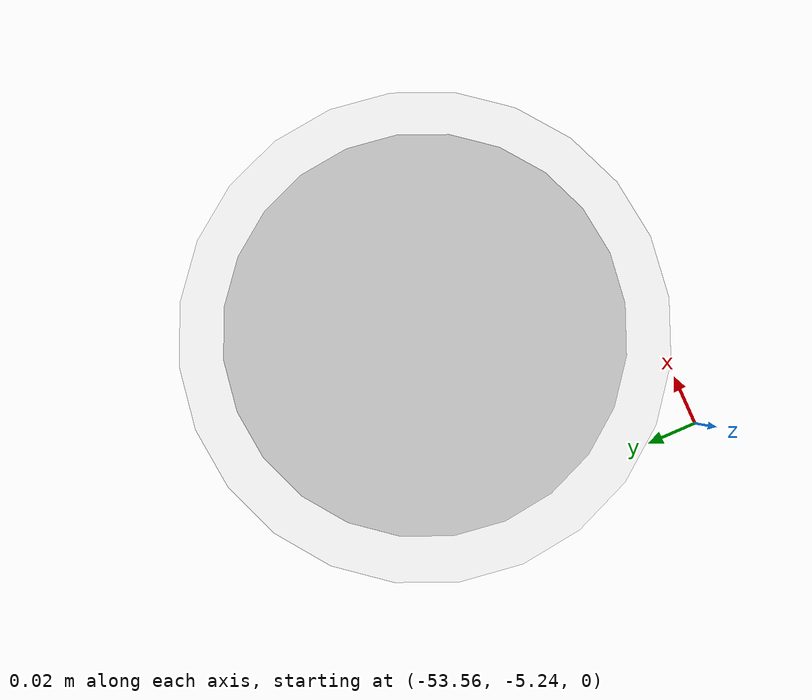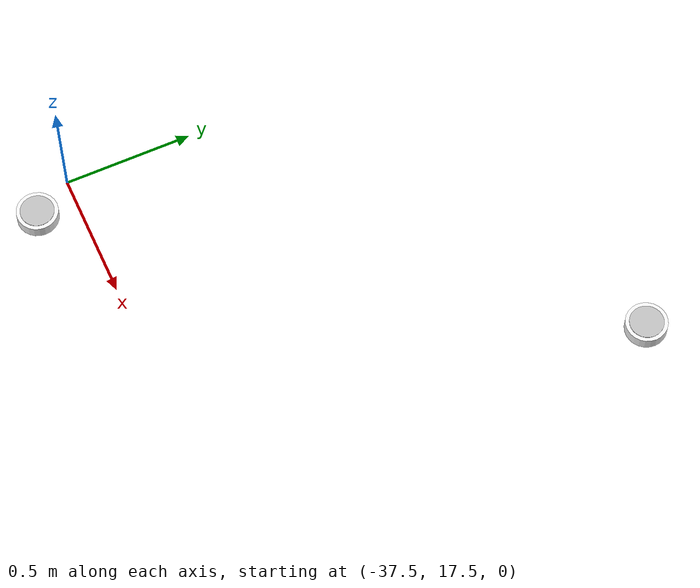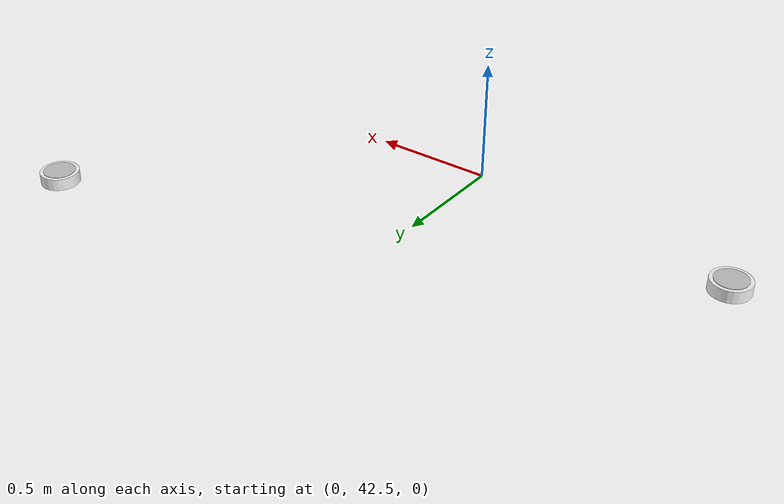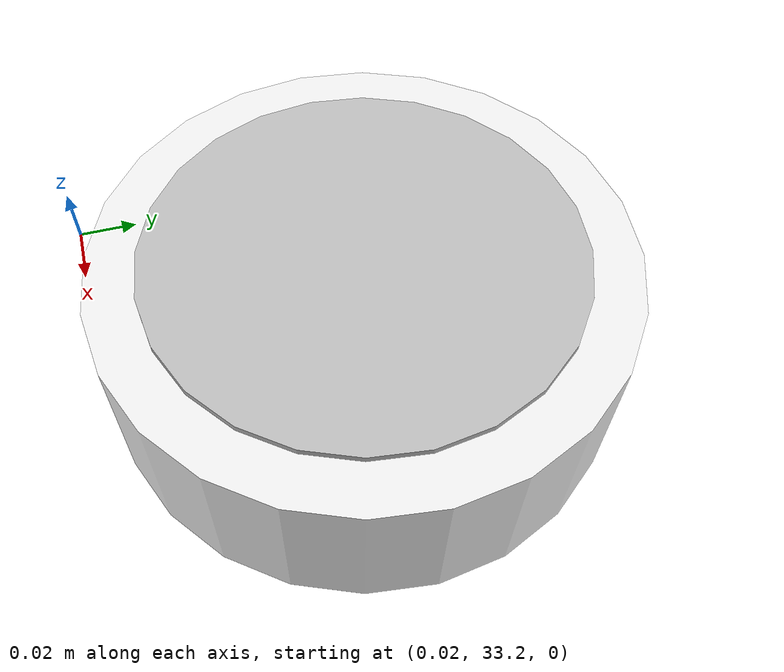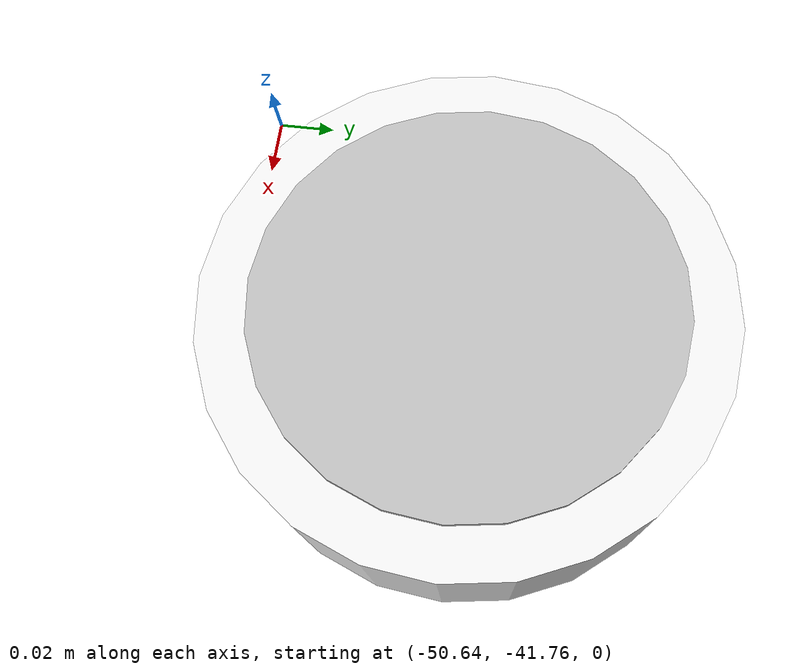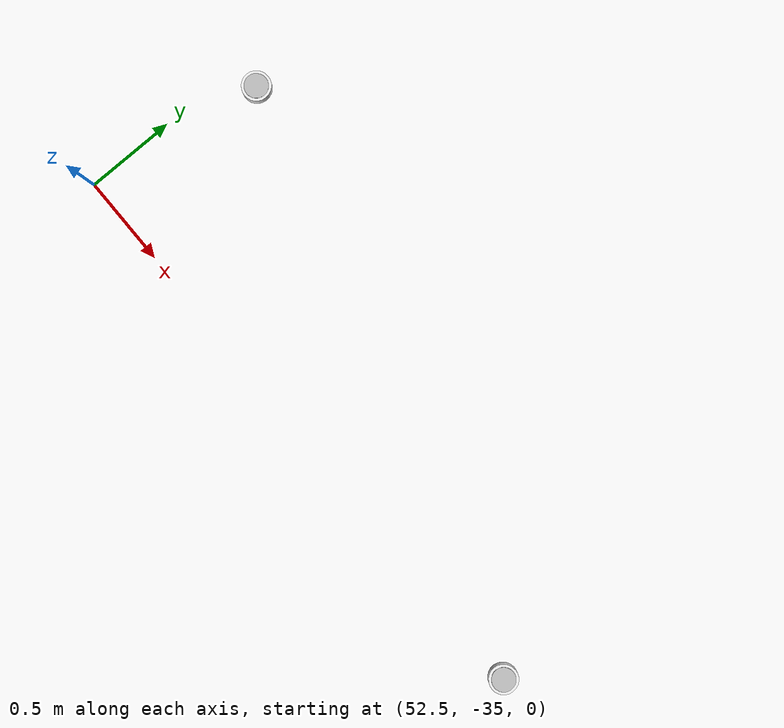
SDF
<?xml version="1.0" encoding="UTF-8"?>
<!-- Author: Frank Loewenich. Generated by tools/make_world.py: regenerate rather than edit, and keep the JSON in step. -->
<sdf version="1.9">
  <world name="bowl_field_dense">
    <physics type="ode">
      <max_step_size>0.004</max_step_size>
      <real_time_factor>1.0</real_time_factor>
      <real_time_update_rate>250</real_time_update_rate>
    </physics>
    <plugin name="gz::sim::systems::Physics" filename="gz-sim-physics-system"/>
    <plugin name="gz::sim::systems::UserCommands" filename="gz-sim-user-commands-system"/>
    <plugin name="gz::sim::systems::SceneBroadcaster" filename="gz-sim-scene-broadcaster-system"/>
    <plugin name="gz::sim::systems::Contact" filename="gz-sim-contact-system"/>
    <plugin name="gz::sim::systems::Imu" filename="gz-sim-imu-system"/>
    <plugin name="gz::sim::systems::AirPressure" filename="gz-sim-air-pressure-system"/>
    <plugin name="gz::sim::systems::ApplyLinkWrench" filename="gz-sim-apply-link-wrench-system"/>
    <plugin name="gz::sim::systems::NavSat" filename="gz-sim-navsat-system"/>
    <plugin name="gz::sim::systems::Sensors" filename="gz-sim-sensors-system">
      <render_engine>ogre2</render_engine>
    </plugin>

    <gui fullscreen="false">
      <plugin filename="MinimalScene" name="3D View">
        <gz-gui><title>3D View</title><property type="bool" key="showTitleBar">false</property><property type="string" key="state">docked</property></gz-gui>
        <engine>ogre2</engine><scene>scene</scene>
        <ambient_light>0.4 0.4 0.4</ambient_light><background_color>0.8 0.8 0.8</background_color>
        <camera_pose>-20 0 12 0 0.5 0</camera_pose>
        <camera_clip><near>0.25</near><far>25000</far></camera_clip>
      </plugin>
      <plugin filename="GzSceneManager" name="Scene Manager"><gz-gui><property key="state" type="string">floating</property><property key="showTitleBar" type="bool">false</property></gz-gui></plugin>
      <plugin filename="InteractiveViewControl" name="Interactive view control"><gz-gui><property key="state" type="string">floating</property><property key="showTitleBar" type="bool">false</property></gz-gui></plugin>
      <plugin filename="CameraTracking" name="Camera Tracking"><gz-gui><property key="state" type="string">floating</property><property key="showTitleBar" type="bool">false</property></gz-gui></plugin>
      <plugin filename="WorldControl" name="World control">
        <gz-gui><title>World control</title><property type="bool" key="showTitleBar">false</property><property type="bool" key="resizable">false</property><property type="double" key="height">72</property><property type="double" key="width">121</property><property type="double" key="z">1</property><property type="string" key="state">floating</property>
          <anchors target="3D View"><line own="left" target="left"/><line own="bottom" target="bottom"/></anchors></gz-gui>
        <play_pause>true</play_pause><step>true</step><start_paused>true</start_paused>
      </plugin>
      <plugin filename="WorldStats" name="World stats">
        <gz-gui><title>World stats</title><property type="bool" key="showTitleBar">false</property><property type="bool" key="resizable">false</property><property type="double" key="height">110</property><property type="double" key="width">290</property><property type="double" key="z">1</property><property type="string" key="state">floating</property>
          <anchors target="3D View"><line own="right" target="right"/><line own="bottom" target="bottom"/></anchors></gz-gui>
        <sim_time>true</sim_time><real_time>true</real_time><real_time_factor>true</real_time_factor><iterations>true</iterations>
      </plugin>
      <plugin filename="ImageDisplay" name="Survey camera"><gz-gui><property key="state" type="string">docked</property></gz-gui><topic>/uav/camera</topic></plugin>
    </gui>

    <gravity>0 0 -9.8</gravity>
    <magnetic_field>6e-06 2.3e-05 -4.2e-05</magnetic_field>
    <atmosphere type="adiabatic"/>
    <scene>
      <grid>false</grid>
      <ambient>0.8 0.8 0.8 1</ambient>
      <background>0.7 0.8 1 1</background>
      <shadows>true</shadows>
    </scene>
    <light type="directional" name="sun">
      <cast_shadows>true</cast_shadows>
      <pose>0 0 100 0 0 0</pose>
      <intensity>1.6</intensity>
      <diffuse>1 1 0.95 1</diffuse>
      <specular>0.3 0.3 0.3 1</specular>
      <direction>-0.4 0.3 -0.85</direction>
    </light>
    <include><uri>model://grass_ground</uri></include>
    <include><name>bowl_000</name><uri>model://bowl</uri><pose>51.988 44.962 0 0 0 0</pose></include>
    <include><name>bowl_001</name><uri>model://bowl</uri><pose>-50.553 -41.679 0 0 0 0</pose></include>
    <include><name>bowl_002</name><uri>model://bowl</uri><pose>38.247 23.691 0 0 0 0</pose></include>
    <include><name>bowl_003</name><uri>model://bowl</uri><pose>19.349 -19.263 0 0 0 0</pose></include>
    <include><name>bowl_004</name><uri>model://bowl</uri><pose>12.078 10.723 0 0 0 0</pose></include>
    <include><name>bowl_005</name><uri>model://bowl</uri><pose>9.257 -34.298 0 0 0 0</pose></include>
    <include><name>bowl_006</name><uri>model://bowl</uri><pose>-7.904 -10.689 0 0 0 0</pose></include>
    <include><name>bowl_007</name><uri>model://bowl</uri><pose>25.423 49.68 0 0 0 0</pose></include>
    <include><name>bowl_008</name><uri>model://bowl</uri><pose>51.231 4.435 0 0 0 0</pose></include>
    <include><name>bowl_009</name><uri>model://bowl</uri><pose>-6.287 -23.269 0 0 0 0</pose></include>
    <include><name>bowl_010</name><uri>model://bowl</uri><pose>-52.905 -47.445 0 0 0 0</pose></include>
    <include><name>bowl_011</name><uri>model://bowl</uri><pose>-4.002 -18.226 0 0 0 0</pose></include>
    <include><name>bowl_012</name><uri>model://bowl</uri><pose>-13.678 39.336 0 0 0 0</pose></include>
    <include><name>bowl_013</name><uri>model://bowl</uri><pose>2.936 6.075 0 0 0 0</pose></include>
    <include><name>bowl_014</name><uri>model://bowl</uri><pose>-30.082 -47.805 0 0 0 0</pose></include>
    <include><name>bowl_015</name><uri>model://bowl</uri><pose>-19.934 -36.476 0 0 0 0</pose></include>
    <include><name>bowl_016</name><uri>model://bowl</uri><pose>1.166 50.068 0 0 0 0</pose></include>
    <include><name>bowl_017</name><uri>model://bowl</uri><pose>19.891 -31.943 0 0 0 0</pose></include>
    <include><name>bowl_018</name><uri>model://bowl</uri><pose>44.867 29.795 0 0 0 0</pose></include>
    <include><name>bowl_019</name><uri>model://bowl</uri><pose>26.722 40.822 0 0 0 0</pose></include>
    <include><name>bowl_020</name><uri>model://bowl</uri><pose>29.969 29.091 0 0 0 0</pose></include>
    <include><name>bowl_021</name><uri>model://bowl</uri><pose>-16.668 48.29 0 0 0 0</pose></include>
    <include><name>bowl_022</name><uri>model://bowl</uri><pose>52.657 -34.017 0 0 0 0</pose></include>
    <include><name>bowl_023</name><uri>model://bowl</uri><pose>28.956 21.601 0 0 0 0</pose></include>
    <include><name>bowl_024</name><uri>model://bowl</uri><pose>-4.4 3.048 0 0 0 0</pose></include>
    <include><name>bowl_025</name><uri>model://bowl</uri><pose>-1.138 42.653 0 0 0 0</pose></include>
    <include><name>bowl_026</name><uri>model://bowl</uri><pose>0.096 33.285 0 0 0 0</pose></include>
    <include><name>bowl_027</name><uri>model://bowl</uri><pose>-16.653 38.438 0 0 0 0</pose></include>
    <include><name>bowl_028</name><uri>model://bowl</uri><pose>45.566 -3.914 0 0 0 0</pose></include>
    <include><name>bowl_029</name><uri>model://bowl</uri><pose>7.718 42.201 0 0 0 0</pose></include>
    <include><name>bowl_030</name><uri>model://bowl</uri><pose>25.51 -1.345 0 0 0 0</pose></include>
    <include><name>bowl_031</name><uri>model://bowl</uri><pose>-31.714 -17.603 0 0 0 0</pose></include>
    <include><name>bowl_032</name><uri>model://bowl</uri><pose>22.751 -33.527 0 0 0 0</pose></include>
    <include><name>bowl_033</name><uri>model://bowl</uri><pose>46.505 -23.279 0 0 0 0</pose></include>
    <include><name>bowl_034</name><uri>model://bowl</uri><pose>46.897 -19.12 0 0 0 0</pose></include>
    <include><name>bowl_035</name><uri>model://bowl</uri><pose>52.139 20.703 0 0 0 0</pose></include>
    <include><name>bowl_036</name><uri>model://bowl</uri><pose>0.484 1.782 0 0 0 0</pose></include>
    <include><name>bowl_037</name><uri>model://bowl</uri><pose>17.261 8.83 0 0 0 0</pose></include>
    <include><name>bowl_038</name><uri>model://bowl</uri><pose>-21.45 -29.335 0 0 0 0</pose></include>
    <include><name>bowl_039</name><uri>model://bowl</uri><pose>1.356 43.589 0 0 0 0</pose></include>
    <include><name>bowl_040</name><uri>model://bowl</uri><pose>14.052 -42.632 0 0 0 0</pose></include>
    <include><name>bowl_041</name><uri>model://bowl</uri><pose>46.473 -30.983 0 0 0 0</pose></include>
    <include><name>bowl_042</name><uri>model://bowl</uri><pose>27.905 -44.301 0 0 0 0</pose></include>
    <include><name>bowl_043</name><uri>model://bowl</uri><pose>17.432 -22.781 0 0 0 0</pose></include>
    <include><name>bowl_044</name><uri>model://bowl</uri><pose>-31.166 37.699 0 0 0 0</pose></include>
    <include><name>bowl_045</name><uri>model://bowl</uri><pose>-44.886 2.245 0 0 0 0</pose></include>
    <include><name>bowl_046</name><uri>model://bowl</uri><pose>40.35 -25.619 0 0 0 0</pose></include>
    <include><name>bowl_047</name><uri>model://bowl</uri><pose>-8.787 21.783 0 0 0 0</pose></include>
    <include><name>bowl_048</name><uri>model://bowl</uri><pose>-53.366 -13.819 0 0 0 0</pose></include>
    <include><name>bowl_049</name><uri>model://bowl</uri><pose>-37.406 17.346 0 0 0 0</pose></include>
    <include><name>bowl_050</name><uri>model://bowl</uri><pose>-47.549 45.638 0 0 0 0</pose></include>
    <include><name>bowl_051</name><uri>model://bowl</uri><pose>-54.111 23.034 0 0 0 0</pose></include>
    <include><name>bowl_052</name><uri>model://bowl</uri><pose>-54.589 -24.529 0 0 0 0</pose></include>
    <include><name>bowl_053</name><uri>model://bowl</uri><pose>35.722 -34.425 0 0 0 0</pose></include>
    <include><name>bowl_054</name><uri>model://bowl</uri><pose>-36.054 19.226 0 0 0 0</pose></include>
    <include><name>bowl_055</name><uri>model://bowl</uri><pose>-13.045 -45.867 0 0 0 0</pose></include>
    <include><name>bowl_056</name><uri>model://bowl</uri><pose>55.86 -34.997 0 0 0 0</pose></include>
    <include><name>bowl_057</name><uri>model://bowl</uri><pose>13.137 24.343 0 0 0 0</pose></include>
    <include><name>bowl_058</name><uri>model://bowl</uri><pose>-44.105 -16.344 0 0 0 0</pose></include>
    <include><name>bowl_059</name><uri>model://bowl</uri><pose>-53.488 -5.155 0 0 0 0</pose></include>
    <spherical_coordinates>
      <surface_model>EARTH_WGS84</surface_model>
      <world_frame_orientation>ENU</world_frame_orientation>
      <latitude_deg>47.397971057728974</latitude_deg>
      <longitude_deg>8.546163739800146</longitude_deg>
      <elevation>0.0</elevation>
    </spherical_coordinates>
  </world>
</sdf>

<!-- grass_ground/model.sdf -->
<!-- Author: Frank Loewenich -->
<sdf version="1.9">
  <model name="grass_ground">
    <static>true</static>
    <link name="link">
      <collision name="collision">
        <geometry><plane><normal>0 0 1</normal><size>400 400</size></plane></geometry>
        <surface><friction><ode><mu>100</mu><mu2>50</mu2></ode></friction></surface>
      </collision>
      <visual name="grass">
        <cast_shadows>false</cast_shadows>
        <geometry><mesh><uri>model://grass_ground/ground_400m.obj</uri></mesh></geometry>
        <material>
          <diffuse>1 1 1 1</diffuse>
          <specular>0.05 0.05 0.05 1</specular>
          <pbr><metal><albedo_map>model://grass_ground/grass.png</albedo_map><roughness>0.95</roughness></metal></pbr>
        </material>
      </visual>
    </link>
  </model>
</sdf>

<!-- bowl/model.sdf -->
<!-- Author: Frank Loewenich -->
<sdf version="1.9">
  <!-- White plastic bowl, 16 cm diameter, 5 cm tall, with a slightly darker inner disc so the rim reads at 11 m. -->
  <model name="bowl">
    <static>true</static>
    <link name="link">
      <visual name="body">
        <pose>0 0 0.025 0 0 0</pose>
        <geometry><cylinder><radius>0.08</radius><length>0.05</length></cylinder></geometry>
        <material>
          <ambient>0.85 0.85 0.85 1</ambient>
          <diffuse>0.95 0.95 0.95 1</diffuse>
          <specular>0.4 0.4 0.4 1</specular>
        </material>
      </visual>
      <visual name="inner">
        <pose>0 0 0.051 0 0 0</pose>
        <geometry><cylinder><radius>0.065</radius><length>0.002</length></cylinder></geometry>
        <material>
          <ambient>0.6 0.6 0.6 1</ambient>
          <diffuse>0.75 0.75 0.75 1</diffuse>
        </material>
      </visual>
      <collision name="collision">
        <pose>0 0 0.025 0 0 0</pose>
        <geometry><cylinder><radius>0.08</radius><length>0.05</length></cylinder></geometry>
      </collision>
    </link>
  </model>
</sdf>
